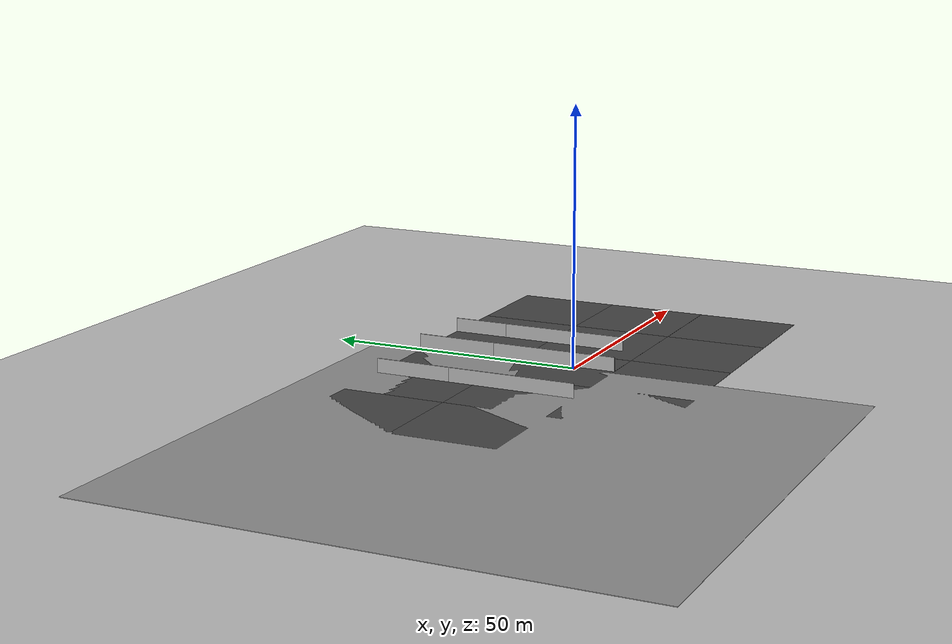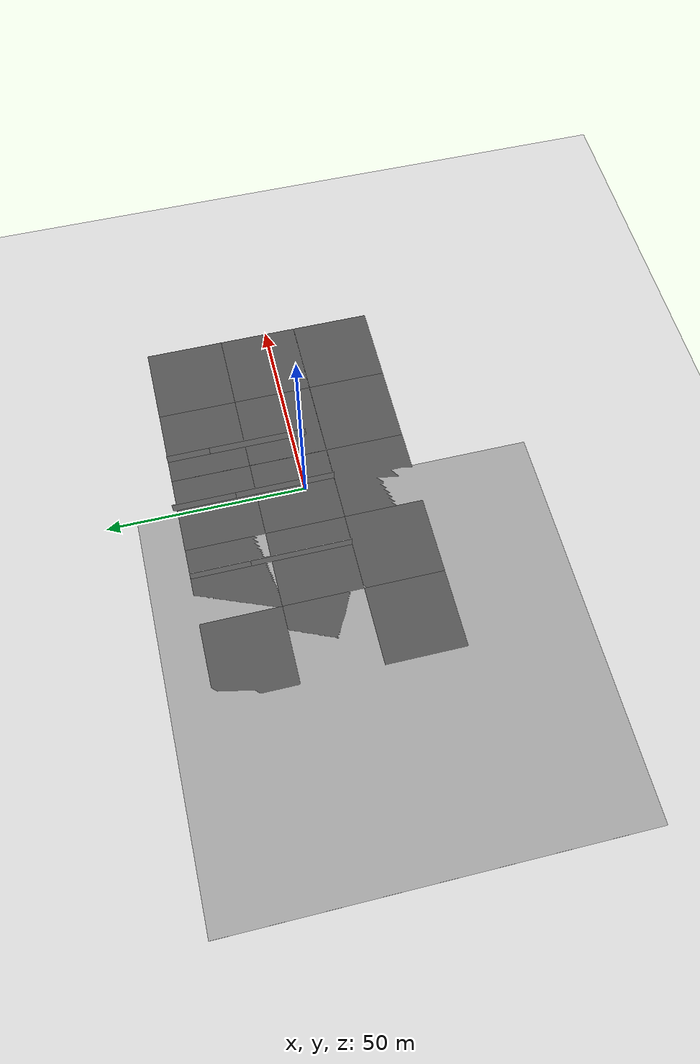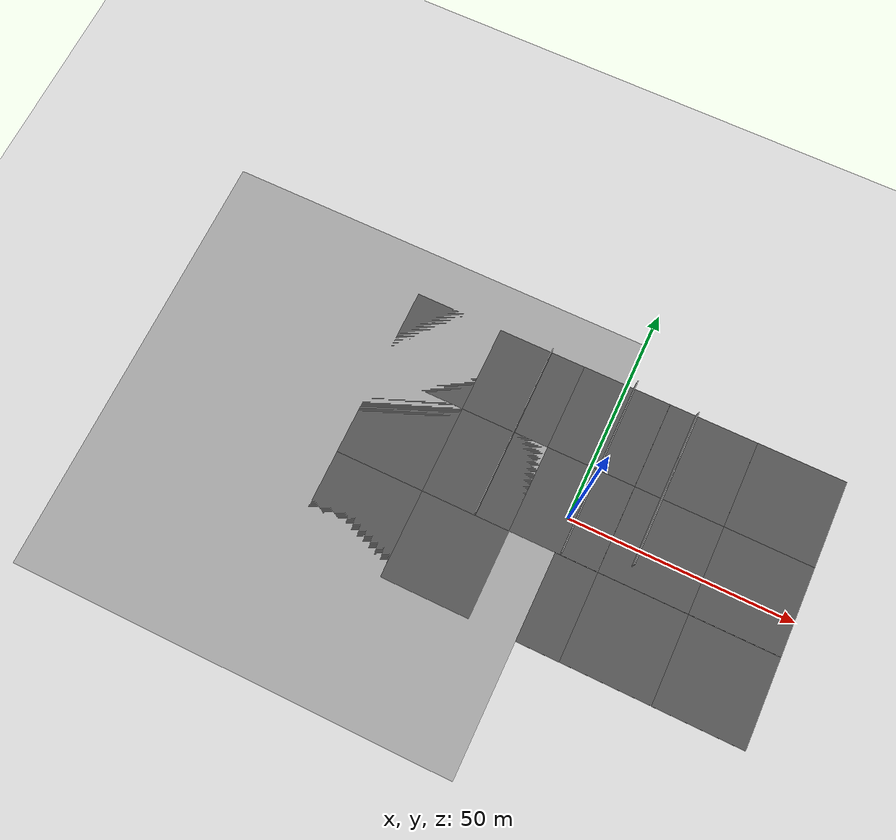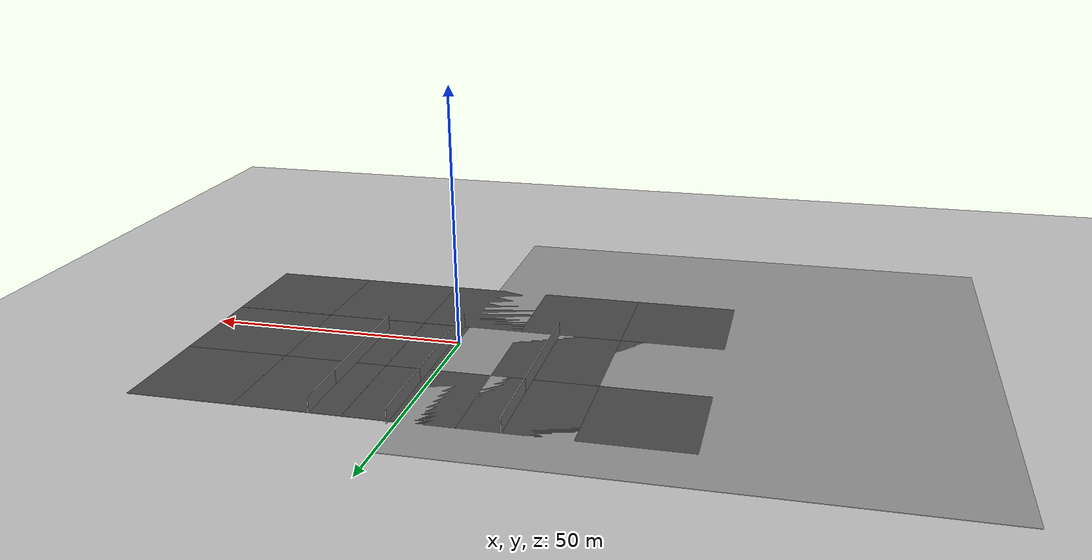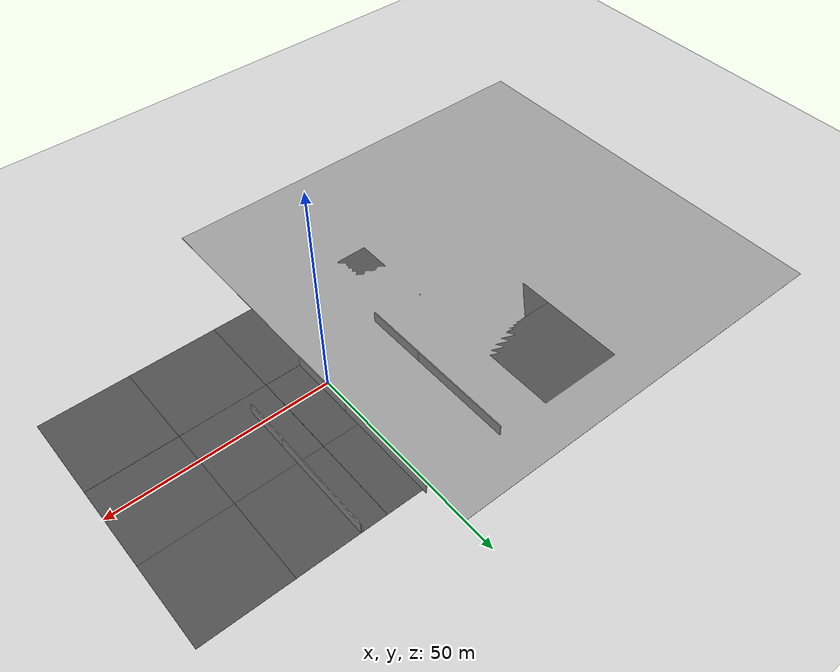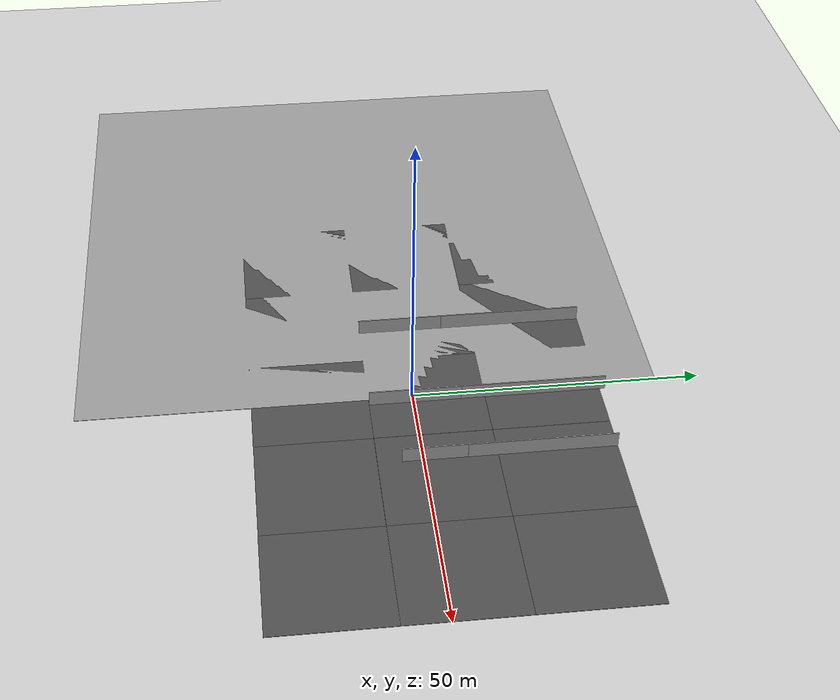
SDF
<sdf version="1.7">
 <world name="default">
  <light name="sun" type="directional">
   <pose>0 0 10 0 -0 0</pose>
   <diffuse>0.8 0.8 0.8 1</diffuse>
   <specular>0.2 0.2 0.2 1</specular>
   <attenuation>
    <range>1000</range>
    <constant>0.9</constant>
    <linear>0.01</linear>
    <quadratic>0.001</quadratic>
   </attenuation>
   <direction>-0.5 0.1 -0.9</direction>
   <spot><inner_angle>0</inner_angle><outer_angle>0</outer_angle><falloff>0</falloff></spot>
  </light>
  <model name="ground_plane">
   <static>1</static>
   <link name="link">
    <collision name="collision">
     <geometry><plane><normal>0 0 1</normal><size>100 100</size></plane></geometry>
     <surface><friction><ode><mu>100</mu><mu2>50</mu2></ode></friction></surface>
    </collision>
    <visual name="visual">
     <cast_shadows>0</cast_shadows>
     <geometry><plane><normal>0 0 1</normal><size>100 100</size></plane></geometry>
     <material>
      <script><uri>file://media/materials/scripts/gazebo.material</uri><name>Gazebo/Grey</name></script>
     </material>
    </visual>
   </link>
  </model>
  <gravity>0 0 -9.8</gravity>
  <magnetic_field>6e-06 2.3e-05 -4.2e-05</magnetic_field>
  <atmosphere type="adiabatic"/>
  <physics type="ode">
   <max_step_size>0.001</max_step_size>
   <real_time_factor>1</real_time_factor>
   <real_time_update_rate>1000</real_time_update_rate>
  </physics>
  <scene><ambient>0.4 0.4 0.4 1</ambient><background>0.7 0.7 0.7 1</background><shadows>1</shadows></scene>
  <spherical_coordinates>
   <surface_model>EARTH_WGS84</surface_model>
   <latitude_deg>0</latitude_deg>
   <longitude_deg>0</longitude_deg>
   <elevation>0</elevation>
   <heading_deg>0</heading_deg>
  </spherical_coordinates>
  <model name="asphalt_plane_0">
   <static>1</static>
   <link name="link">
    <collision name="collision"><geometry><box><size>20 20 0.1</size></box></geometry></collision>
    <visual name="visual">
     <cast_shadows>0</cast_shadows>
     <geometry><box><size>20 20 0.1</size></box></geometry>
     <material>
      <script>
       <uri>model://asphalt_plane/materials/scripts</uri>
       <uri>model://asphalt_plane/materials/textures</uri>
       <name>vrc/asphalt</name>
      </script>
     </material>
    </visual>
   </link>
   <pose>-20.06 -17.6782 0 0 -0 0</pose>
  </model>
  <model name="asphalt_plane_1">
   <static>1</static>
   <link name="link">
    <collision name="collision"><geometry><box><size>20 20 0.1</size></box></geometry></collision>
    <visual name="visual">
     <cast_shadows>0</cast_shadows>
     <geometry><box><size>20 20 0.1</size></box></geometry>
     <material>
      <script>
       <uri>model://asphalt_plane/materials/scripts</uri>
       <uri>model://asphalt_plane/materials/textures</uri>
       <name>vrc/asphalt</name>
      </script>
     </material>
    </visual>
   </link>
   <pose>-0.058754 -17.6963 0 0 -0 0</pose>
  </model>
  <model name="asphalt_plane_2">
   <static>1</static>
   <link name="link">
    <collision name="collision"><geometry><box><size>20 20 0.1</size></box></geometry></collision>
    <visual name="visual">
     <cast_shadows>0</cast_shadows>
     <geometry><box><size>20 20 0.1</size></box></geometry>
     <material>
      <script>
       <uri>model://asphalt_plane/materials/scripts</uri>
       <uri>model://asphalt_plane/materials/textures</uri>
       <name>vrc/asphalt</name>
      </script>
     </material>
    </visual>
   </link>
   <pose>19.9191 -17.6724 0 0 -0 0</pose>
  </model>
  <model name="asphalt_plane_3">
   <static>1</static>
   <link name="link">
    <collision name="collision"><geometry><box><size>20 20 0.1</size></box></geometry></collision>
    <visual name="visual">
     <cast_shadows>0</cast_shadows>
     <geometry><box><size>20 20 0.1</size></box></geometry>
     <material>
      <script>
       <uri>model://asphalt_plane/materials/scripts</uri>
       <uri>model://asphalt_plane/materials/textures</uri>
       <name>vrc/asphalt</name>
      </script>
     </material>
    </visual>
   </link>
   <pose>39.8865 -17.6923 0 0 -0 0</pose>
  </model>
  <model name="ground_plane_0">
   <static>1</static>
   <link name="link">
    <collision name="collision">
     <geometry><plane><normal>0 0 1</normal><size>100 100</size></plane></geometry>
     <surface>
      <contact><collide_bitmask>65535</collide_bitmask></contact>
      <friction><ode><mu>100</mu><mu2>50</mu2></ode></friction>
     </surface>
    </collision>
    <visual name="visual">
     <cast_shadows>0</cast_shadows>
     <geometry><plane><normal>0 0 1</normal><size>100 100</size></plane></geometry>
     <material>
      <script><uri>file://media/materials/scripts/gazebo.material</uri><name>Gazebo/Grey</name></script>
     </material>
    </visual>
   </link>
   <pose>-49.6429 -7.52714 0 0 -0 0</pose>
  </model>
  <model name="asphalt_plane_clone">
   <link name="link">
    <inertial>
     <mass>1</mass>
     <inertia><ixx>1</ixx><ixy>0</ixy><ixz>0</ixz><iyy>1</iyy><iyz>0</iyz><izz>1</izz></inertia>
    </inertial>
    <visual name="visual">
     <cast_shadows>0</cast_shadows>
     <geometry><box><size>20 20 0.1</size></box></geometry>
     <material>
      <script>
       <uri>model://asphalt_plane/materials/scripts</uri>
       <uri>model://asphalt_plane/materials/textures</uri>
       <name>vrc/asphalt</name>
      </script>
      <shader type="pixel"><normal_map>__default__</normal_map></shader>
      <emissive>0 0.6 0 0</emissive>
      <ambient>0.5 0.6 0.3 1</ambient>
      <diffuse>0.5 0.6 0.3 1</diffuse>
      <specular>0.2 0.6 0.2 1</specular>
     </material>
    </visual>
    <collision name="collision">
     <geometry><box><size>20 20 0.1</size></box></geometry>
     <surface>
      <friction>
       <ode><mu>1</mu><mu2>1</mu2><fdir1>0 0 0</fdir1><slip1>0</slip1><slip2>0</slip2></ode>
       <torsional>
        <coefficient>1</coefficient>
        <patch_radius>0</patch_radius>
        <surface_radius>0</surface_radius>
        <use_patch_radius>1</use_patch_radius>
        <ode><slip>0</slip></ode>
       </torsional>
      </friction>
      <bounce><restitution_coefficient>0</restitution_coefficient><threshold>1e+06</threshold></bounce>
      <contact>
       <collide_without_contact>0</collide_without_contact>
       <collide_without_contact_bitmask>1</collide_without_contact_bitmask>
       <collide_bitmask>1</collide_bitmask>
       <ode>
        <soft_cfm>0</soft_cfm>
        <soft_erp>0.2</soft_erp>
        <kp>1e+13</kp>
        <kd>1</kd>
        <max_vel>0.01</max_vel>
        <min_depth>0</min_depth>
       </ode>
       <bullet>
        <split_impulse>1</split_impulse>
        <split_impulse_penetration_threshold>-0.01</split_impulse_penetration_threshold>
        <soft_cfm>0</soft_cfm>
        <soft_erp>0.2</soft_erp>
        <kp>1e+13</kp>
        <kd>1</kd>
       </bullet>
      </contact>
     </surface>
    </collision>
   </link>
   <static>1</static>
   <pose>-40.1025 2.33022 0 0 -0 0</pose>
  </model>
  <model name="asphalt_plane_0_clone">
   <static>1</static>
   <link name="link">
    <collision name="collision"><geometry><box><size>20 20 0.1</size></box></geometry></collision>
    <visual name="visual">
     <cast_shadows>0</cast_shadows>
     <geometry><box><size>20 20 0.1</size></box></geometry>
     <material>
      <script>
       <uri>model://asphalt_plane/materials/scripts</uri>
       <uri>model://asphalt_plane/materials/textures</uri>
       <name>vrc/asphalt</name>
      </script>
     </material>
    </visual>
   </link>
   <pose>-40.0913 -17.6773 0 0 -0 0</pose>
  </model>
  <model name="asphalt_plane_clone_clone">
   <link name="link">
    <inertial>
     <mass>1</mass>
     <inertia><ixx>1</ixx><ixy>0</ixy><ixz>0</ixz><iyy>1</iyy><iyz>0</iyz><izz>1</izz></inertia>
    </inertial>
    <visual name="visual">
     <cast_shadows>0</cast_shadows>
     <geometry><box><size>20 20 0.1</size></box></geometry>
     <material>
      <script>
       <uri>model://asphalt_plane/materials/scripts</uri>
       <uri>model://asphalt_plane/materials/textures</uri>
       <name>vrc/asphalt</name>
      </script>
      <shader type="pixel"><normal_map>__default__</normal_map></shader>
      <emissive>0 0.6 0 0</emissive>
      <ambient>0.5 0.6 0.3 1</ambient>
      <diffuse>0.5 0.6 0.3 1</diffuse>
      <specular>0.2 0.6 0.2 1</specular>
     </material>
    </visual>
    <collision name="collision">
     <geometry><box><size>20 20 0.1</size></box></geometry>
     <surface>
      <friction>
       <ode><mu>1</mu><mu2>1</mu2><fdir1>0 0 0</fdir1><slip1>0</slip1><slip2>0</slip2></ode>
       <torsional>
        <coefficient>1</coefficient>
        <patch_radius>0</patch_radius>
        <surface_radius>0</surface_radius>
        <use_patch_radius>1</use_patch_radius>
        <ode><slip>0</slip></ode>
       </torsional>
      </friction>
      <bounce><restitution_coefficient>0</restitution_coefficient><threshold>1e+06</threshold></bounce>
      <contact>
       <collide_without_contact>0</collide_without_contact>
       <collide_without_contact_bitmask>1</collide_without_contact_bitmask>
       <collide_bitmask>1</collide_bitmask>
       <ode>
        <soft_cfm>0</soft_cfm>
        <soft_erp>0.2</soft_erp>
        <kp>1e+13</kp>
        <kd>1</kd>
        <max_vel>0.01</max_vel>
        <min_depth>0</min_depth>
       </ode>
       <bullet>
        <split_impulse>1</split_impulse>
        <split_impulse_penetration_threshold>-0.01</split_impulse_penetration_threshold>
        <soft_cfm>0</soft_cfm>
        <soft_erp>0.2</soft_erp>
        <kp>1e+13</kp>
        <kd>1</kd>
       </bullet>
      </contact>
     </surface>
    </collision>
   </link>
   <static>1</static>
   <pose>-20.0927 2.34102 0 0 -0 0</pose>
  </model>
  <model name="asphalt_plane_clone_clone_0">
   <link name="link">
    <inertial>
     <mass>1</mass>
     <inertia><ixx>1</ixx><ixy>0</ixy><ixz>0</ixz><iyy>1</iyy><iyz>0</iyz><izz>1</izz></inertia>
    </inertial>
    <visual name="visual">
     <cast_shadows>0</cast_shadows>
     <geometry><box><size>20 20 0.1</size></box></geometry>
     <material>
      <script>
       <uri>model://asphalt_plane/materials/scripts</uri>
       <uri>model://asphalt_plane/materials/textures</uri>
       <name>vrc/asphalt</name>
      </script>
      <shader type="pixel"><normal_map>__default__</normal_map></shader>
      <emissive>0 0.6 0 0</emissive>
      <ambient>0.5 0.6 0.3 1</ambient>
      <diffuse>0.5 0.6 0.3 1</diffuse>
      <specular>0.2 0.6 0.2 1</specular>
     </material>
    </visual>
    <collision name="collision">
     <geometry><box><size>20 20 0.1</size></box></geometry>
     <surface>
      <friction>
       <ode><mu>1</mu><mu2>1</mu2><fdir1>0 0 0</fdir1><slip1>0</slip1><slip2>0</slip2></ode>
       <torsional>
        <coefficient>1</coefficient>
        <patch_radius>0</patch_radius>
        <surface_radius>0</surface_radius>
        <use_patch_radius>1</use_patch_radius>
        <ode><slip>0</slip></ode>
       </torsional>
      </friction>
      <bounce><restitution_coefficient>0</restitution_coefficient><threshold>1e+06</threshold></bounce>
      <contact>
       <collide_without_contact>0</collide_without_contact>
       <collide_without_contact_bitmask>1</collide_without_contact_bitmask>
       <collide_bitmask>1</collide_bitmask>
       <ode>
        <soft_cfm>0</soft_cfm>
        <soft_erp>0.2</soft_erp>
        <kp>1e+13</kp>
        <kd>1</kd>
        <max_vel>0.01</max_vel>
        <min_depth>0</min_depth>
       </ode>
       <bullet>
        <split_impulse>1</split_impulse>
        <split_impulse_penetration_threshold>-0.01</split_impulse_penetration_threshold>
        <soft_cfm>0</soft_cfm>
        <soft_erp>0.2</soft_erp>
        <kp>1e+13</kp>
        <kd>1</kd>
       </bullet>
      </contact>
     </surface>
    </collision>
   </link>
   <static>1</static>
   <pose>-0.121625 2.33501 0 0 -0 0</pose>
  </model>
  <model name="asphalt_plane_clone_clone_1">
   <link name="link">
    <inertial>
     <mass>1</mass>
     <inertia><ixx>1</ixx><ixy>0</ixy><ixz>0</ixz><iyy>1</iyy><iyz>0</iyz><izz>1</izz></inertia>
    </inertial>
    <visual name="visual">
     <cast_shadows>0</cast_shadows>
     <geometry><box><size>20 20 0.1</size></box></geometry>
     <material>
      <script>
       <uri>model://asphalt_plane/materials/scripts</uri>
       <uri>model://asphalt_plane/materials/textures</uri>
       <name>vrc/asphalt</name>
      </script>
      <shader type="pixel"><normal_map>__default__</normal_map></shader>
      <emissive>0 0.6 0 0</emissive>
      <ambient>0.5 0.6 0.3 1</ambient>
      <diffuse>0.5 0.6 0.3 1</diffuse>
      <specular>0.2 0.6 0.2 1</specular>
     </material>
    </visual>
    <collision name="collision">
     <geometry><box><size>20 20 0.1</size></box></geometry>
     <surface>
      <friction>
       <ode><mu>1</mu><mu2>1</mu2><fdir1>0 0 0</fdir1><slip1>0</slip1><slip2>0</slip2></ode>
       <torsional>
        <coefficient>1</coefficient>
        <patch_radius>0</patch_radius>
        <surface_radius>0</surface_radius>
        <use_patch_radius>1</use_patch_radius>
        <ode><slip>0</slip></ode>
       </torsional>
      </friction>
      <bounce><restitution_coefficient>0</restitution_coefficient><threshold>1e+06</threshold></bounce>
      <contact>
       <collide_without_contact>0</collide_without_contact>
       <collide_without_contact_bitmask>1</collide_without_contact_bitmask>
       <collide_bitmask>1</collide_bitmask>
       <ode>
        <soft_cfm>0</soft_cfm>
        <soft_erp>0.2</soft_erp>
        <kp>1e+13</kp>
        <kd>1</kd>
        <max_vel>0.01</max_vel>
        <min_depth>0</min_depth>
       </ode>
       <bullet>
        <split_impulse>1</split_impulse>
        <split_impulse_penetration_threshold>-0.01</split_impulse_penetration_threshold>
        <soft_cfm>0</soft_cfm>
        <soft_erp>0.2</soft_erp>
        <kp>1e+13</kp>
        <kd>1</kd>
       </bullet>
      </contact>
     </surface>
    </collision>
   </link>
   <static>1</static>
   <pose>19.8934 2.33815 0 0 -0 0</pose>
  </model>
  <model name="asphalt_plane_clone_clone_2">
   <link name="link">
    <inertial>
     <mass>1</mass>
     <inertia><ixx>1</ixx><ixy>0</ixy><ixz>0</ixz><iyy>1</iyy><iyz>0</iyz><izz>1</izz></inertia>
    </inertial>
    <visual name="visual">
     <cast_shadows>0</cast_shadows>
     <geometry><box><size>20 20 0.1</size></box></geometry>
     <material>
      <script>
       <uri>model://asphalt_plane/materials/scripts</uri>
       <uri>model://asphalt_plane/materials/textures</uri>
       <name>vrc/asphalt</name>
      </script>
      <shader type="pixel"><normal_map>__default__</normal_map></shader>
      <emissive>0 0.6 0 0</emissive>
      <ambient>0.5 0.6 0.3 1</ambient>
      <diffuse>0.5 0.6 0.3 1</diffuse>
      <specular>0.2 0.6 0.2 1</specular>
     </material>
    </visual>
    <collision name="collision">
     <geometry><box><size>20 20 0.1</size></box></geometry>
     <surface>
      <friction>
       <ode><mu>1</mu><mu2>1</mu2><fdir1>0 0 0</fdir1><slip1>0</slip1><slip2>0</slip2></ode>
       <torsional>
        <coefficient>1</coefficient>
        <patch_radius>0</patch_radius>
        <surface_radius>0</surface_radius>
        <use_patch_radius>1</use_patch_radius>
        <ode><slip>0</slip></ode>
       </torsional>
      </friction>
      <bounce><restitution_coefficient>0</restitution_coefficient><threshold>1e+06</threshold></bounce>
      <contact>
       <collide_without_contact>0</collide_without_contact>
       <collide_without_contact_bitmask>1</collide_without_contact_bitmask>
       <collide_bitmask>1</collide_bitmask>
       <ode>
        <soft_cfm>0</soft_cfm>
        <soft_erp>0.2</soft_erp>
        <kp>1e+13</kp>
        <kd>1</kd>
        <max_vel>0.01</max_vel>
        <min_depth>0</min_depth>
       </ode>
       <bullet>
        <split_impulse>1</split_impulse>
        <split_impulse_penetration_threshold>-0.01</split_impulse_penetration_threshold>
        <soft_cfm>0</soft_cfm>
        <soft_erp>0.2</soft_erp>
        <kp>1e+13</kp>
        <kd>1</kd>
       </bullet>
      </contact>
     </surface>
    </collision>
   </link>
   <static>1</static>
   <pose>39.8893 2.34752 0 0 -0 0</pose>
  </model>
  <model name="asphalt_plane_clone_clone_3">
   <link name="link">
    <inertial>
     <mass>1</mass>
     <inertia><ixx>1</ixx><ixy>0</ixy><ixz>0</ixz><iyy>1</iyy><iyz>0</iyz><izz>1</izz></inertia>
    </inertial>
    <visual name="visual">
     <cast_shadows>0</cast_shadows>
     <geometry><box><size>20 20 0.1</size></box></geometry>
     <material>
      <script>
       <uri>model://asphalt_plane/materials/scripts</uri>
       <uri>model://asphalt_plane/materials/textures</uri>
       <name>vrc/asphalt</name>
      </script>
      <shader type="pixel"><normal_map>__default__</normal_map></shader>
      <emissive>0 0.6 0 0</emissive>
      <ambient>0.5 0.6 0.3 1</ambient>
      <diffuse>0.5 0.6 0.3 1</diffuse>
      <specular>0.2 0.6 0.2 1</specular>
     </material>
    </visual>
    <collision name="collision">
     <geometry><box><size>20 20 0.1</size></box></geometry>
     <surface>
      <friction>
       <ode><mu>1</mu><mu2>1</mu2><fdir1>0 0 0</fdir1><slip1>0</slip1><slip2>0</slip2></ode>
       <torsional>
        <coefficient>1</coefficient>
        <patch_radius>0</patch_radius>
        <surface_radius>0</surface_radius>
        <use_patch_radius>1</use_patch_radius>
        <ode><slip>0</slip></ode>
       </torsional>
      </friction>
      <bounce><restitution_coefficient>0</restitution_coefficient><threshold>1e+06</threshold></bounce>
      <contact>
       <collide_without_contact>0</collide_without_contact>
       <collide_without_contact_bitmask>1</collide_without_contact_bitmask>
       <collide_bitmask>1</collide_bitmask>
       <ode>
        <soft_cfm>0</soft_cfm>
        <soft_erp>0.2</soft_erp>
        <kp>1e+13</kp>
        <kd>1</kd>
        <max_vel>0.01</max_vel>
        <min_depth>0</min_depth>
       </ode>
       <bullet>
        <split_impulse>1</split_impulse>
        <split_impulse_penetration_threshold>-0.01</split_impulse_penetration_threshold>
        <soft_cfm>0</soft_cfm>
        <soft_erp>0.2</soft_erp>
        <kp>1e+13</kp>
        <kd>1</kd>
       </bullet>
      </contact>
     </surface>
    </collision>
   </link>
   <static>1</static>
   <pose>39.8855 22.3354 0 0 -0 0</pose>
  </model>
  <model name="asphalt_plane_clone_clone_4">
   <link name="link">
    <inertial>
     <mass>1</mass>
     <inertia><ixx>1</ixx><ixy>0</ixy><ixz>0</ixz><iyy>1</iyy><iyz>0</iyz><izz>1</izz></inertia>
    </inertial>
    <visual name="visual">
     <cast_shadows>0</cast_shadows>
     <geometry><box><size>20 20 0.1</size></box></geometry>
     <material>
      <script>
       <uri>model://asphalt_plane/materials/scripts</uri>
       <uri>model://asphalt_plane/materials/textures</uri>
       <name>vrc/asphalt</name>
      </script>
      <shader type="pixel"><normal_map>__default__</normal_map></shader>
      <emissive>0 0.6 0 0</emissive>
      <ambient>0.5 0.6 0.3 1</ambient>
      <diffuse>0.5 0.6 0.3 1</diffuse>
      <specular>0.2 0.6 0.2 1</specular>
     </material>
    </visual>
    <collision name="collision">
     <geometry><box><size>20 20 0.1</size></box></geometry>
     <surface>
      <friction>
       <ode><mu>1</mu><mu2>1</mu2><fdir1>0 0 0</fdir1><slip1>0</slip1><slip2>0</slip2></ode>
       <torsional>
        <coefficient>1</coefficient>
        <patch_radius>0</patch_radius>
        <surface_radius>0</surface_radius>
        <use_patch_radius>1</use_patch_radius>
        <ode><slip>0</slip></ode>
       </torsional>
      </friction>
      <bounce><restitution_coefficient>0</restitution_coefficient><threshold>1e+06</threshold></bounce>
      <contact>
       <collide_without_contact>0</collide_without_contact>
       <collide_without_contact_bitmask>1</collide_without_contact_bitmask>
       <collide_bitmask>1</collide_bitmask>
       <ode>
        <soft_cfm>0</soft_cfm>
        <soft_erp>0.2</soft_erp>
        <kp>1e+13</kp>
        <kd>1</kd>
        <max_vel>0.01</max_vel>
        <min_depth>0</min_depth>
       </ode>
       <bullet>
        <split_impulse>1</split_impulse>
        <split_impulse_penetration_threshold>-0.01</split_impulse_penetration_threshold>
        <soft_cfm>0</soft_cfm>
        <soft_erp>0.2</soft_erp>
        <kp>1e+13</kp>
        <kd>1</kd>
       </bullet>
      </contact>
     </surface>
    </collision>
   </link>
   <static>1</static>
   <pose>19.8832 22.319 0 0 -0 0</pose>
  </model>
  <model name="asphalt_plane_clone_clone_5">
   <link name="link">
    <inertial>
     <mass>1</mass>
     <inertia><ixx>1</ixx><ixy>0</ixy><ixz>0</ixz><iyy>1</iyy><iyz>0</iyz><izz>1</izz></inertia>
    </inertial>
    <visual name="visual">
     <cast_shadows>0</cast_shadows>
     <geometry><box><size>20 20 0.1</size></box></geometry>
     <material>
      <script>
       <uri>model://asphalt_plane/materials/scripts</uri>
       <uri>model://asphalt_plane/materials/textures</uri>
       <name>vrc/asphalt</name>
      </script>
      <shader type="pixel"><normal_map>__default__</normal_map></shader>
      <emissive>0 0.6 0 0</emissive>
      <ambient>0.5 0.6 0.3 1</ambient>
      <diffuse>0.5 0.6 0.3 1</diffuse>
      <specular>0.2 0.6 0.2 1</specular>
     </material>
    </visual>
    <collision name="collision">
     <geometry><box><size>20 20 0.1</size></box></geometry>
     <surface>
      <friction>
       <ode><mu>1</mu><mu2>1</mu2><fdir1>0 0 0</fdir1><slip1>0</slip1><slip2>0</slip2></ode>
       <torsional>
        <coefficient>1</coefficient>
        <patch_radius>0</patch_radius>
        <surface_radius>0</surface_radius>
        <use_patch_radius>1</use_patch_radius>
        <ode><slip>0</slip></ode>
       </torsional>
      </friction>
      <bounce><restitution_coefficient>0</restitution_coefficient><threshold>1e+06</threshold></bounce>
      <contact>
       <collide_without_contact>0</collide_without_contact>
       <collide_without_contact_bitmask>1</collide_without_contact_bitmask>
       <collide_bitmask>1</collide_bitmask>
       <ode>
        <soft_cfm>0</soft_cfm>
        <soft_erp>0.2</soft_erp>
        <kp>1e+13</kp>
        <kd>1</kd>
        <max_vel>0.01</max_vel>
        <min_depth>0</min_depth>
       </ode>
       <bullet>
        <split_impulse>1</split_impulse>
        <split_impulse_penetration_threshold>-0.01</split_impulse_penetration_threshold>
        <soft_cfm>0</soft_cfm>
        <soft_erp>0.2</soft_erp>
        <kp>1e+13</kp>
        <kd>1</kd>
       </bullet>
      </contact>
     </surface>
    </collision>
   </link>
   <static>1</static>
   <pose>-0.127494 22.3186 0 0 -0 0</pose>
  </model>
  <model name="asphalt_plane_clone_clone_6">
   <link name="link">
    <inertial>
     <mass>1</mass>
     <inertia><ixx>1</ixx><ixy>0</ixy><ixz>0</ixz><iyy>1</iyy><iyz>0</iyz><izz>1</izz></inertia>
    </inertial>
    <visual name="visual">
     <cast_shadows>0</cast_shadows>
     <geometry><box><size>20 20 0.1</size></box></geometry>
     <material>
      <script>
       <uri>model://asphalt_plane/materials/scripts</uri>
       <uri>model://asphalt_plane/materials/textures</uri>
       <name>vrc/asphalt</name>
      </script>
      <shader type="pixel"><normal_map>__default__</normal_map></shader>
      <emissive>0 0.6 0 0</emissive>
      <ambient>0.5 0.6 0.3 1</ambient>
      <diffuse>0.5 0.6 0.3 1</diffuse>
      <specular>0.2 0.6 0.2 1</specular>
     </material>
    </visual>
    <collision name="collision">
     <geometry><box><size>20 20 0.1</size></box></geometry>
     <surface>
      <friction>
       <ode><mu>1</mu><mu2>1</mu2><fdir1>0 0 0</fdir1><slip1>0</slip1><slip2>0</slip2></ode>
       <torsional>
        <coefficient>1</coefficient>
        <patch_radius>0</patch_radius>
        <surface_radius>0</surface_radius>
        <use_patch_radius>1</use_patch_radius>
        <ode><slip>0</slip></ode>
       </torsional>
      </friction>
      <bounce><restitution_coefficient>0</restitution_coefficient><threshold>1e+06</threshold></bounce>
      <contact>
       <collide_without_contact>0</collide_without_contact>
       <collide_without_contact_bitmask>1</collide_without_contact_bitmask>
       <collide_bitmask>1</collide_bitmask>
       <ode>
        <soft_cfm>0</soft_cfm>
        <soft_erp>0.2</soft_erp>
        <kp>1e+13</kp>
        <kd>1</kd>
        <max_vel>0.01</max_vel>
        <min_depth>0</min_depth>
       </ode>
       <bullet>
        <split_impulse>1</split_impulse>
        <split_impulse_penetration_threshold>-0.01</split_impulse_penetration_threshold>
        <soft_cfm>0</soft_cfm>
        <soft_erp>0.2</soft_erp>
        <kp>1e+13</kp>
        <kd>1</kd>
       </bullet>
      </contact>
     </surface>
    </collision>
   </link>
   <static>1</static>
   <pose>-20.1315 22.2872 0 0 -0 0</pose>
  </model>
  <model name="asphalt_plane_clone_clone_7">
   <link name="link">
    <inertial>
     <mass>1</mass>
     <inertia><ixx>1</ixx><ixy>0</ixy><ixz>0</ixz><iyy>1</iyy><iyz>0</iyz><izz>1</izz></inertia>
    </inertial>
    <visual name="visual">
     <cast_shadows>0</cast_shadows>
     <geometry><box><size>20 20 0.1</size></box></geometry>
     <material>
      <script>
       <uri>model://asphalt_plane/materials/scripts</uri>
       <uri>model://asphalt_plane/materials/textures</uri>
       <name>vrc/asphalt</name>
      </script>
      <shader type="pixel"><normal_map>__default__</normal_map></shader>
      <emissive>0 0.6 0 0</emissive>
      <ambient>0.5 0.6 0.3 1</ambient>
      <diffuse>0.5 0.6 0.3 1</diffuse>
      <specular>0.2 0.6 0.2 1</specular>
     </material>
    </visual>
    <collision name="collision">
     <geometry><box><size>20 20 0.1</size></box></geometry>
     <surface>
      <friction>
       <ode><mu>1</mu><mu2>1</mu2><fdir1>0 0 0</fdir1><slip1>0</slip1><slip2>0</slip2></ode>
       <torsional>
        <coefficient>1</coefficient>
        <patch_radius>0</patch_radius>
        <surface_radius>0</surface_radius>
        <use_patch_radius>1</use_patch_radius>
        <ode><slip>0</slip></ode>
       </torsional>
      </friction>
      <bounce><restitution_coefficient>0</restitution_coefficient><threshold>1e+06</threshold></bounce>
      <contact>
       <collide_without_contact>0</collide_without_contact>
       <collide_without_contact_bitmask>1</collide_without_contact_bitmask>
       <collide_bitmask>1</collide_bitmask>
       <ode>
        <soft_cfm>0</soft_cfm>
        <soft_erp>0.2</soft_erp>
        <kp>1e+13</kp>
        <kd>1</kd>
        <max_vel>0.01</max_vel>
        <min_depth>0</min_depth>
       </ode>
       <bullet>
        <split_impulse>1</split_impulse>
        <split_impulse_penetration_threshold>-0.01</split_impulse_penetration_threshold>
        <soft_cfm>0</soft_cfm>
        <soft_erp>0.2</soft_erp>
        <kp>1e+13</kp>
        <kd>1</kd>
       </bullet>
      </contact>
     </surface>
    </collision>
   </link>
   <static>1</static>
   <pose>-40.1136 22.2993 0 0 -0 0</pose>
  </model>
  <model name="grey_wall_1">
   <link name="link">
    <pose>6.23796 0.011185 1.4 0 -0 0</pose>
    <inertial>
     <mass>1</mass>
     <inertia><ixx>1</ixx><ixy>0</ixy><ixz>0</ixz><iyy>1</iyy><iyz>0</iyz><izz>1</izz></inertia>
    </inertial>
    <visual name="visual">
     <cast_shadows>0</cast_shadows>
     <geometry><box><size>25 0.2 2.8</size></box></geometry>
     <material>
      <script>
       <uri>model://grey_wall/materials/scripts</uri>
       <uri>model://grey_wall/materials/textures</uri>
       <name>vrc/grey_wall</name>
      </script>
      <shader type="pixel"><normal_map>__default__</normal_map></shader>
      <ambient>1 1 1 1</ambient>
      <diffuse>1 1 1 1</diffuse>
      <specular>0 0 0 1</specular>
      <emissive>0 0 0 1</emissive>
     </material>
    </visual>
    <collision name="collision">
     <geometry><box><size>7.5 0.2 2.8</size></box></geometry>
     <surface>
      <friction>
       <ode><mu>1</mu><mu2>1</mu2><fdir1>0 0 0</fdir1><slip1>0</slip1><slip2>0</slip2></ode>
       <torsional>
        <coefficient>1</coefficient>
        <patch_radius>0</patch_radius>
        <surface_radius>0</surface_radius>
        <use_patch_radius>1</use_patch_radius>
        <ode><slip>0</slip></ode>
       </torsional>
      </friction>
      <bounce><restitution_coefficient>0</restitution_coefficient><threshold>1e+06</threshold></bounce>
      <contact>
       <collide_without_contact>0</collide_without_contact>
       <collide_without_contact_bitmask>1</collide_without_contact_bitmask>
       <collide_bitmask>1</collide_bitmask>
       <ode>
        <soft_cfm>0</soft_cfm>
        <soft_erp>0.2</soft_erp>
        <kp>1e+13</kp>
        <kd>1</kd>
        <max_vel>0.01</max_vel>
        <min_depth>0</min_depth>
       </ode>
       <bullet>
        <split_impulse>1</split_impulse>
        <split_impulse_penetration_threshold>-0.01</split_impulse_penetration_threshold>
        <soft_cfm>0</soft_cfm>
        <soft_erp>0.2</soft_erp>
        <kp>1e+13</kp>
        <kd>1</kd>
       </bullet>
      </contact>
     </surface>
    </collision>
   </link>
   <static>1</static>
   <pose>15.7849 15.1682 0 0 0 -1.56985</pose>
  </model>
  <model name="grey_wall_1_clone_0">
   <link name="link">
    <pose>6.23796 0.011185 1.4 0 -0 0</pose>
    <inertial>
     <mass>1</mass>
     <inertia><ixx>1</ixx><ixy>0</ixy><ixz>0</ixz><iyy>1</iyy><iyz>0</iyz><izz>1</izz></inertia>
    </inertial>
    <visual name="visual">
     <cast_shadows>0</cast_shadows>
     <geometry><box><size>25 0.2 2.8</size></box></geometry>
     <material>
      <script>
       <uri>model://grey_wall/materials/scripts</uri>
       <uri>model://grey_wall/materials/textures</uri>
       <name>vrc/grey_wall</name>
      </script>
      <shader type="pixel"><normal_map>__default__</normal_map></shader>
      <ambient>1 1 1 1</ambient>
      <diffuse>1 1 1 1</diffuse>
      <specular>0 0 0 1</specular>
      <emissive>0 0 0 1</emissive>
     </material>
    </visual>
    <collision name="collision">
     <geometry><box><size>7.5 0.2 2.8</size></box></geometry>
     <surface>
      <friction>
       <ode><mu>1</mu><mu2>1</mu2><fdir1>0 0 0</fdir1><slip1>0</slip1><slip2>0</slip2></ode>
       <torsional>
        <coefficient>1</coefficient>
        <patch_radius>0</patch_radius>
        <surface_radius>0</surface_radius>
        <use_patch_radius>1</use_patch_radius>
        <ode><slip>0</slip></ode>
       </torsional>
      </friction>
      <bounce><restitution_coefficient>0</restitution_coefficient><threshold>1e+06</threshold></bounce>
      <contact>
       <collide_without_contact>0</collide_without_contact>
       <collide_without_contact_bitmask>1</collide_without_contact_bitmask>
       <collide_bitmask>1</collide_bitmask>
       <ode>
        <soft_cfm>0</soft_cfm>
        <soft_erp>0.2</soft_erp>
        <kp>1e+13</kp>
        <kd>1</kd>
        <max_vel>0.01</max_vel>
        <min_depth>0</min_depth>
       </ode>
       <bullet>
        <split_impulse>1</split_impulse>
        <split_impulse_penetration_threshold>-0.01</split_impulse_penetration_threshold>
        <soft_cfm>0</soft_cfm>
        <soft_erp>0.2</soft_erp>
        <kp>1e+13</kp>
        <kd>1</kd>
       </bullet>
      </contact>
     </surface>
    </collision>
   </link>
   <static>1</static>
   <pose>15.7884 26.0733 0 0 0 -1.56985</pose>
  </model>
  <model name="grey_wall_1_clone_1">
   <link name="link">
    <pose>6.23796 0.011185 1.4 0 -0 0</pose>
    <inertial>
     <mass>1</mass>
     <inertia><ixx>1</ixx><ixy>0</ixy><ixz>0</ixz><iyy>1</iyy><iyz>0</iyz><izz>1</izz></inertia>
    </inertial>
    <visual name="visual">
     <cast_shadows>0</cast_shadows>
     <geometry><box><size>25 0.2 2.8</size></box></geometry>
     <material>
      <script>
       <uri>model://grey_wall/materials/scripts</uri>
       <uri>model://grey_wall/materials/textures</uri>
       <name>vrc/grey_wall</name>
      </script>
      <shader type="pixel"><normal_map>__default__</normal_map></shader>
      <ambient>1 1 1 1</ambient>
      <diffuse>1 1 1 1</diffuse>
      <specular>0 0 0 1</specular>
      <emissive>0 0 0 1</emissive>
     </material>
    </visual>
    <collision name="collision">
     <geometry><box><size>7.5 0.2 2.8</size></box></geometry>
     <surface>
      <friction>
       <ode><mu>1</mu><mu2>1</mu2><fdir1>0 0 0</fdir1><slip1>0</slip1><slip2>0</slip2></ode>
       <torsional>
        <coefficient>1</coefficient>
        <patch_radius>0</patch_radius>
        <surface_radius>0</surface_radius>
        <use_patch_radius>1</use_patch_radius>
        <ode><slip>0</slip></ode>
       </torsional>
      </friction>
      <bounce><restitution_coefficient>0</restitution_coefficient><threshold>1e+06</threshold></bounce>
      <contact>
       <collide_without_contact>0</collide_without_contact>
       <collide_without_contact_bitmask>1</collide_without_contact_bitmask>
       <collide_bitmask>1</collide_bitmask>
       <ode>
        <soft_cfm>0</soft_cfm>
        <soft_erp>0.2</soft_erp>
        <kp>1e+13</kp>
        <kd>1</kd>
        <max_vel>0.01</max_vel>
        <min_depth>0</min_depth>
       </ode>
       <bullet>
        <split_impulse>1</split_impulse>
        <split_impulse_penetration_threshold>-0.01</split_impulse_penetration_threshold>
        <soft_cfm>0</soft_cfm>
        <soft_erp>0.2</soft_erp>
        <kp>1e+13</kp>
        <kd>1</kd>
       </bullet>
      </contact>
     </surface>
    </collision>
   </link>
   <static>1</static>
   <pose>1.47417 11.081 0 0 0 -1.56985</pose>
  </model>
  <model name="grey_wall_1_clone_1_clone">
   <link name="link">
    <pose>6.23796 0.011185 1.4 0 -0 0</pose>
    <inertial>
     <mass>1</mass>
     <inertia><ixx>1</ixx><ixy>0</ixy><ixz>0</ixz><iyy>1</iyy><iyz>0</iyz><izz>1</izz></inertia>
    </inertial>
    <visual name="visual">
     <cast_shadows>0</cast_shadows>
     <geometry><box><size>25 0.2 2.8</size></box></geometry>
     <material>
      <script>
       <uri>model://grey_wall/materials/scripts</uri>
       <uri>model://grey_wall/materials/textures</uri>
       <name>vrc/grey_wall</name>
      </script>
      <shader type="pixel"><normal_map>__default__</normal_map></shader>
      <ambient>1 1 1 1</ambient>
      <diffuse>1 1 1 1</diffuse>
      <specular>0 0 0 1</specular>
      <emissive>0 0 0 1</emissive>
     </material>
    </visual>
    <collision name="collision">
     <geometry><box><size>7.5 0.2 2.8</size></box></geometry>
     <surface>
      <friction>
       <ode><mu>1</mu><mu2>1</mu2><fdir1>0 0 0</fdir1><slip1>0</slip1><slip2>0</slip2></ode>
       <torsional>
        <coefficient>1</coefficient>
        <patch_radius>0</patch_radius>
        <surface_radius>0</surface_radius>
        <use_patch_radius>1</use_patch_radius>
        <ode><slip>0</slip></ode>
       </torsional>
      </friction>
      <bounce><restitution_coefficient>0</restitution_coefficient><threshold>1e+06</threshold></bounce>
      <contact>
       <collide_without_contact>0</collide_without_contact>
       <collide_without_contact_bitmask>1</collide_without_contact_bitmask>
       <collide_bitmask>1</collide_bitmask>
       <ode>
        <soft_cfm>0</soft_cfm>
        <soft_erp>0.2</soft_erp>
        <kp>1e+13</kp>
        <kd>1</kd>
        <max_vel>0.01</max_vel>
        <min_depth>0</min_depth>
       </ode>
       <bullet>
        <split_impulse>1</split_impulse>
        <split_impulse_penetration_threshold>-0.01</split_impulse_penetration_threshold>
        <soft_cfm>0</soft_cfm>
        <soft_erp>0.2</soft_erp>
        <kp>1e+13</kp>
        <kd>1</kd>
       </bullet>
      </contact>
     </surface>
    </collision>
   </link>
   <static>1</static>
   <pose>1.46284 26.9822 0 0 0 -1.56985</pose>
  </model>
  <model name="grey_wall_1_clone_1_clone_0">
   <link name="link">
    <pose>6.23796 0.011185 1.4 0 -0 0</pose>
    <inertial>
     <mass>1</mass>
     <inertia><ixx>1</ixx><ixy>0</ixy><ixz>0</ixz><iyy>1</iyy><iyz>0</iyz><izz>1</izz></inertia>
    </inertial>
    <visual name="visual">
     <cast_shadows>0</cast_shadows>
     <geometry><box><size>25 0.2 2.8</size></box></geometry>
     <material>
      <script>
       <uri>model://grey_wall/materials/scripts</uri>
       <uri>model://grey_wall/materials/textures</uri>
       <name>vrc/grey_wall</name>
      </script>
      <shader type="pixel"><normal_map>__default__</normal_map></shader>
      <ambient>1 1 1 1</ambient>
      <diffuse>1 1 1 1</diffuse>
      <specular>0 0 0 1</specular>
      <emissive>0 0 0 1</emissive>
     </material>
    </visual>
    <collision name="collision">
     <geometry><box><size>7.5 0.2 2.8</size></box></geometry>
     <surface>
      <friction>
       <ode><mu>1</mu><mu2>1</mu2><fdir1>0 0 0</fdir1><slip1>0</slip1><slip2>0</slip2></ode>
       <torsional>
        <coefficient>1</coefficient>
        <patch_radius>0</patch_radius>
        <surface_radius>0</surface_radius>
        <use_patch_radius>1</use_patch_radius>
        <ode><slip>0</slip></ode>
       </torsional>
      </friction>
      <bounce><restitution_coefficient>0</restitution_coefficient><threshold>1e+06</threshold></bounce>
      <contact>
       <collide_without_contact>0</collide_without_contact>
       <collide_without_contact_bitmask>1</collide_without_contact_bitmask>
       <collide_bitmask>1</collide_bitmask>
       <ode>
        <soft_cfm>0</soft_cfm>
        <soft_erp>0.2</soft_erp>
        <kp>1e+13</kp>
        <kd>1</kd>
        <max_vel>0.01</max_vel>
        <min_depth>0</min_depth>
       </ode>
       <bullet>
        <split_impulse>1</split_impulse>
        <split_impulse_penetration_threshold>-0.01</split_impulse_penetration_threshold>
        <soft_cfm>0</soft_cfm>
        <soft_erp>0.2</soft_erp>
        <kp>1e+13</kp>
        <kd>1</kd>
       </bullet>
      </contact>
     </surface>
    </collision>
   </link>
   <static>1</static>
   <pose>-17.8985 11.0833 0 0 0 -1.56985</pose>
  </model>
  <model name="grey_wall_1_clone_1_clone_1">
   <link name="link">
    <pose>6.23796 0.011185 1.4 0 -0 0</pose>
    <inertial>
     <mass>1</mass>
     <inertia><ixx>1</ixx><ixy>0</ixy><ixz>0</ixz><iyy>1</iyy><iyz>0</iyz><izz>1</izz></inertia>
    </inertial>
    <visual name="visual">
     <cast_shadows>0</cast_shadows>
     <geometry><box><size>25 0.2 2.8</size></box></geometry>
     <material>
      <script>
       <uri>model://grey_wall/materials/scripts</uri>
       <uri>model://grey_wall/materials/textures</uri>
       <name>vrc/grey_wall</name>
      </script>
      <shader type="pixel"><normal_map>__default__</normal_map></shader>
      <ambient>1 1 1 1</ambient>
      <diffuse>1 1 1 1</diffuse>
      <specular>0 0 0 1</specular>
      <emissive>0 0 0 1</emissive>
     </material>
    </visual>
    <collision name="collision">
     <geometry><box><size>7.5 0.2 2.8</size></box></geometry>
     <surface>
      <friction>
       <ode><mu>1</mu><mu2>1</mu2><fdir1>0 0 0</fdir1><slip1>0</slip1><slip2>0</slip2></ode>
       <torsional>
        <coefficient>1</coefficient>
        <patch_radius>0</patch_radius>
        <surface_radius>0</surface_radius>
        <use_patch_radius>1</use_patch_radius>
        <ode><slip>0</slip></ode>
       </torsional>
      </friction>
      <bounce><restitution_coefficient>0</restitution_coefficient><threshold>1e+06</threshold></bounce>
      <contact>
       <collide_without_contact>0</collide_without_contact>
       <collide_without_contact_bitmask>1</collide_without_contact_bitmask>
       <collide_bitmask>1</collide_bitmask>
       <ode>
        <soft_cfm>0</soft_cfm>
        <soft_erp>0.2</soft_erp>
        <kp>1e+13</kp>
        <kd>1</kd>
        <max_vel>0.01</max_vel>
        <min_depth>0</min_depth>
       </ode>
       <bullet>
        <split_impulse>1</split_impulse>
        <split_impulse_penetration_threshold>-0.01</split_impulse_penetration_threshold>
        <soft_cfm>0</soft_cfm>
        <soft_erp>0.2</soft_erp>
        <kp>1e+13</kp>
        <kd>1</kd>
       </bullet>
      </contact>
     </surface>
    </collision>
   </link>
   <static>1</static>
   <pose>-17.9074 25.9385 0 0 0 -1.56985</pose>
  </model>
 </world>
</sdf>
